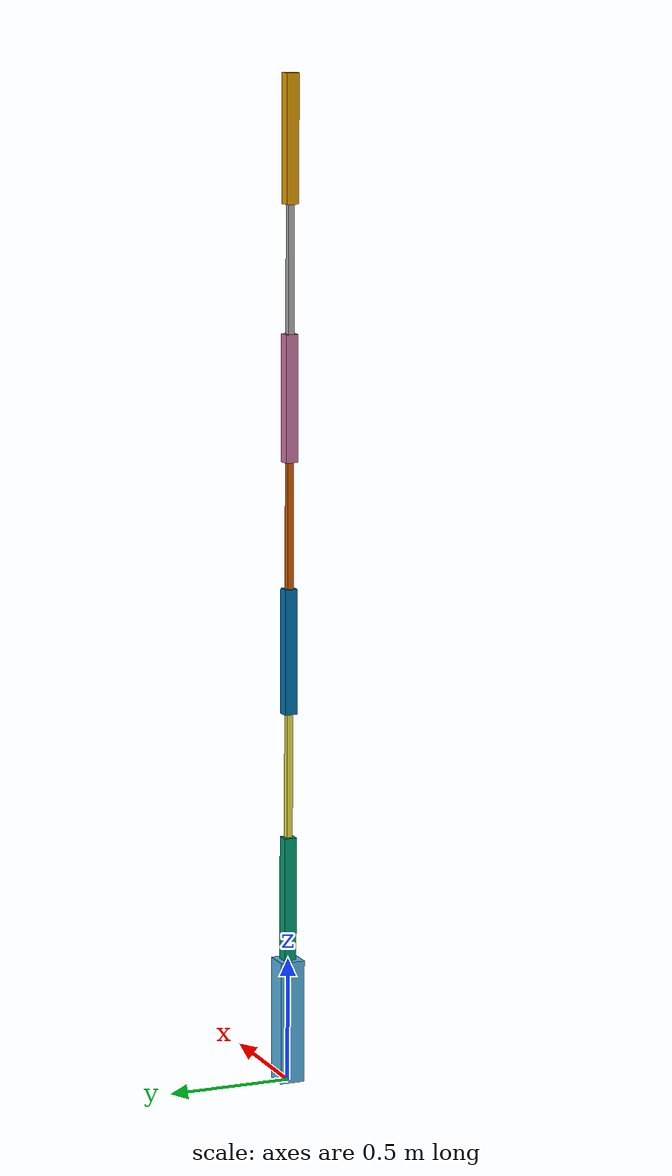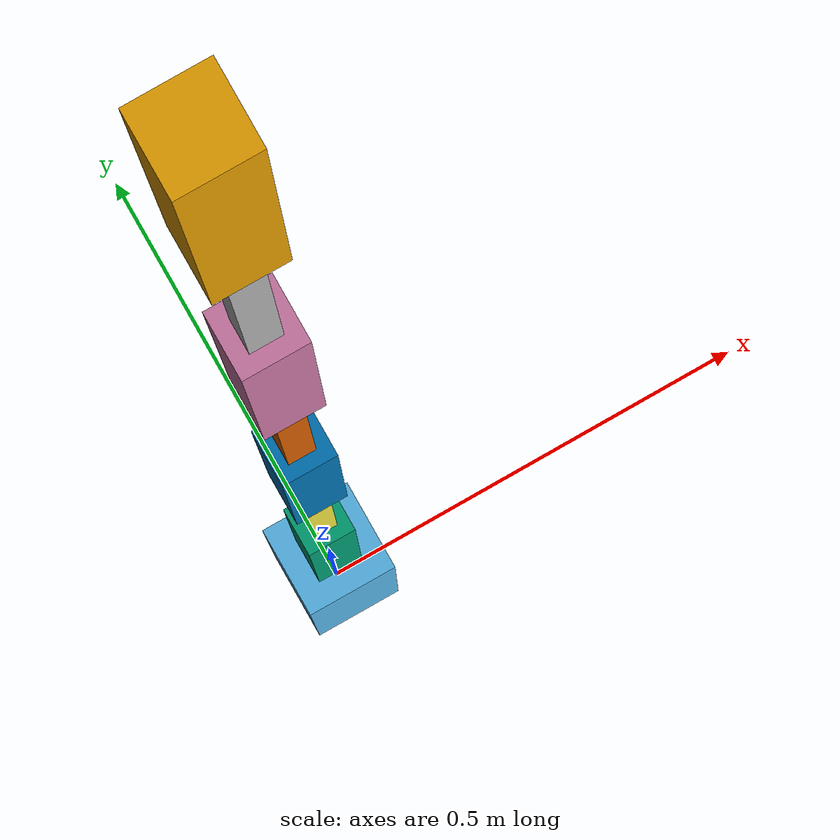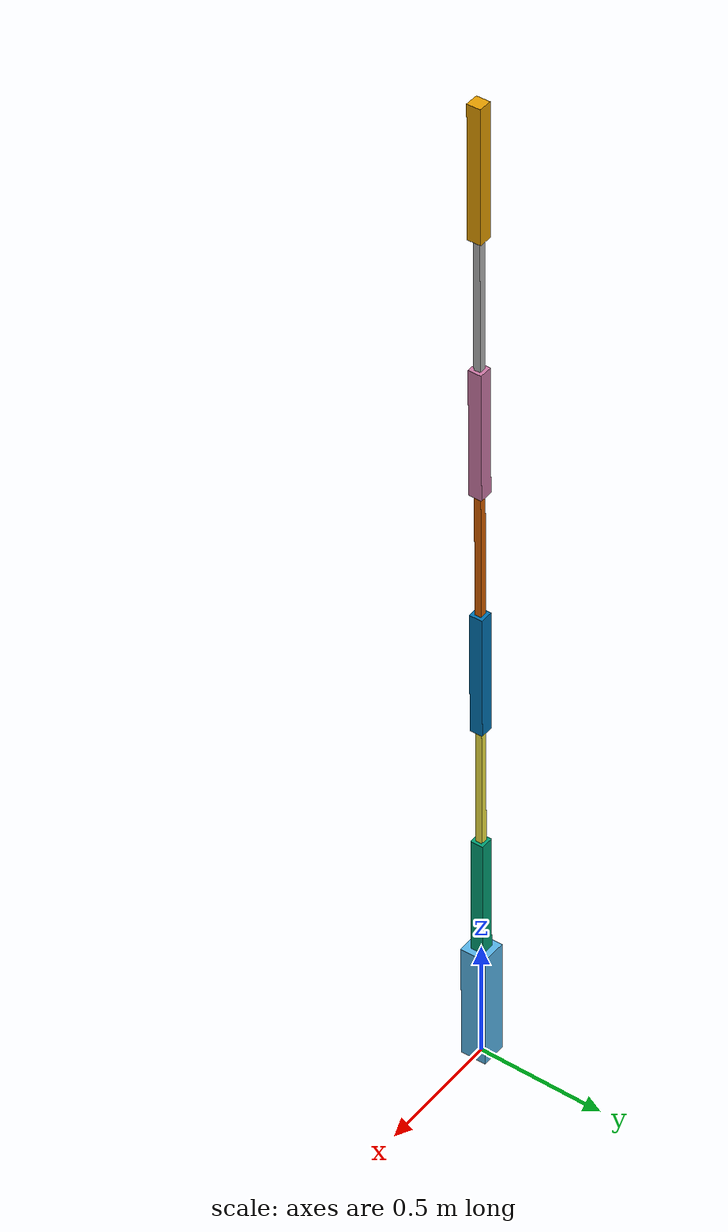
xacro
<robot name="cyton_gamma_1500" xmlns:xacro="http://www.ros.org/wiki/xacro">

	<xacro:property name="link1_x" value="0.1" />
	<xacro:property name="link1_y" value="0.1" />
	<xacro:property name="link1_z" value="0.5" />

	<xacro:property name="link2_x" value="0.05" />
	<xacro:property name="link2_y" value="0.05" />
	<xacro:property name="link2_z" value="0.5" />

	<xacro:property name="link3_x" value="0.025" />
	<xacro:property name="link3_y" value="0.025" />
	<xacro:property name="link3_z" value="0.5" />

	<xacro:property name="link4_x" value="0.05" />
	<xacro:property name="link4_y" value="0.05" />
	<xacro:property name="link4_z" value="0.5" />

	<xacro:property name="link5_x" value="0.025" />
	<xacro:property name="link5_y" value="0.025" />
	<xacro:property name="link5_z" value="0.5" />

	<xacro:property name="link6_x" value="0.05" />
	<xacro:property name="link6_y" value="0.05" />
	<xacro:property name="link6_z" value="0.5" />

	<xacro:property name="link7_x" value="0.025" />
	<xacro:property name="link7_y" value="0.025" />
	<xacro:property name="link7_z" value="0.5" />

	<xacro:property name="link8_x" value="0.05" />
	<xacro:property name="link8_y" value="0.05" />
	<xacro:property name="link8_z" value="0.5" />

	<!-- Used for fixing robot to Gazebo 'base_link' -->
	<link name="world"/>

	<joint name="fixed" type="fixed">
		<parent link="world"/>
		<child link="link1"/>
	</joint>

	<link name="link1">
		<collision>
	      <origin xyz="0 0 ${link1_z/2}" rpy="0 0 0"/>
	      <geometry>
	    	<box size="${link1_x} ${link1_y} ${link1_z}"/>
	      </geometry>
	    </collision>

	    <inertial>
	      <origin xyz="0 0 ${link1_z/2}" rpy="0 0 0"/>
	      <mass value="1"/>
	      <inertia
		    ixx="1.0" ixy="0.0" ixz="0.0"
		    iyy="1.0" iyz="0.0"
		    izz="1.0"/>
	    </inertial>

		<visual>
			<origin xyz="0 0 ${link1_z/2}" rpy="0 0 0" />
			<geometry>
				<box size="${link1_x} ${link1_y} ${link1_z}"/>
			</geometry>
		</visual>
	</link>

	<link name="link2">
		<collision>
	      <origin xyz="0 0 ${link2_z/2}" rpy="0 0 0"/>
	      <geometry>
	    	<box size="${link2_x} ${link2_y} ${link2_z}"/>
	      </geometry>
	    </collision>

	    <inertial>
	      <origin xyz="0 0 ${link2_z/2}" rpy="0 0 0"/>
	      <mass value="1"/>
	      <inertia
		    ixx="1.0" ixy="0.0" ixz="0.0"
		    iyy="1.0" iyz="0.0"
		    izz="1.0"/>
	    </inertial>

		<visual>
			<origin xyz="0 0 ${link2_z/2}" rpy="0 0 0" />
			<geometry>
				<box size="${link2_x} ${link2_y} ${link2_z}"/>
			</geometry>
		</visual>
	</link>

	<link name="link3">
		<collision>
	      <origin xyz="0 0 ${link3_z/2}" rpy="0 0 0"/>
	      <geometry>
	    	<box size="${link3_x} ${link3_y} ${link3_z}"/>
	      </geometry>
	    </collision>

	    <inertial>
	      <origin xyz="0 0 ${link3_z/2}" rpy="0 0 0"/>
	      <mass value="1"/>
	      <inertia
		    ixx="1.0" ixy="0.0" ixz="0.0"
		    iyy="1.0" iyz="0.0"
		    izz="1.0"/>
	    </inertial>

		<visual>
			<origin xyz="0 0 ${link3_z/2}" rpy="0 0 0" />
			<geometry>
				<box size="${link3_x} ${link3_y} ${link3_z}"/>
			</geometry>
		</visual>
	</link>

	<link name="link4">
		<collision>
	      <origin xyz="0 0 ${link4_z/2}" rpy="0 0 0"/>
	      <geometry>
	    	<box size="${link4_x} ${link4_y} ${link4_z}"/>
	      </geometry>
	    </collision>

	    <inertial>
	      <origin xyz="0 0 ${link4_z/2}" rpy="0 0 0"/>
	      <mass value="1"/>
	      <inertia
		    ixx="1.0" ixy="0.0" ixz="0.0"
		    iyy="1.0" iyz="0.0"
		    izz="1.0"/>
	    </inertial>

		<visual>
			<origin xyz="0 0 ${link4_z/2}" rpy="0 0 0" />
			<geometry>
				<box size="${link4_x} ${link4_y} ${link4_z}"/>
			</geometry>
		</visual>
	</link>

	<link name="link5">
		<collision>
	      <origin xyz="0 0 ${link5_z/2}" rpy="0 0 0"/>
	      <geometry>
	    	<box size="${link5_x} ${link5_y} ${link5_z}"/>
	      </geometry>
	    </collision>

	    <inertial>
	      <origin xyz="0 0 ${link5_z/2}" rpy="0 0 0"/>
	      <mass value="1"/>
	      <inertia
		    ixx="1.0" ixy="0.0" ixz="0.0"
		    iyy="1.0" iyz="0.0"
		    izz="1.0"/>
	    </inertial>

		<visual>
			<origin xyz="0 0 ${link5_z/2}" rpy="0 0 0" />
			<geometry>
				<box size="${link5_x} ${link5_y} ${link5_z}"/>
			</geometry>
		</visual>
	</link>

	<link name="link6">
		<collision>
	      <origin xyz="0 0 ${link6_z/2}" rpy="0 0 0"/>
	      <geometry>
	    	<box size="${link6_x} ${link6_y} ${link6_z}"/>
	      </geometry>
	    </collision>

	    <inertial>
	      <origin xyz="0 0 ${link6_z/2}" rpy="0 0 0"/>
	      <mass value="1"/>
	      <inertia
		    ixx="1.0" ixy="0.0" ixz="0.0"
		    iyy="1.0" iyz="0.0"
		    izz="1.0"/>
	    </inertial>

		<visual>
			<origin xyz="0 0 ${link6_z/2}" rpy="0 0 0" />
			<geometry>
				<box size="${link6_x} ${link6_y} ${link6_z}"/>
			</geometry>
		</visual>
	</link>

	<link name="link7">
		<collision>
	      <origin xyz="0 0 ${link7_z/2}" rpy="0 0 0"/>
	      <geometry>
	    	<box size="${link7_x} ${link7_y} ${link7_z}"/>
	      </geometry>
	    </collision>

	    <inertial>
	      <origin xyz="0 0 ${link7_z/2}" rpy="0 0 0"/>
	      <mass value="1"/>
	      <inertia
		    ixx="1.0" ixy="0.0" ixz="0.0"
		    iyy="1.0" iyz="0.0"
		    izz="1.0"/>
	    </inertial>

		<visual>
			<origin xyz="0 0 ${link7_z/2}" rpy="0 0 0" />
			<geometry>
				<box size="${link7_x} ${link7_y} ${link7_z}"/>
			</geometry>
		</visual>
	</link>
	<link name="link8">
		<collision>
	      <origin xyz="0 0 ${link8_z/2}" rpy="0 0 0"/>
	      <geometry>
	    	<box size="${link8_x} ${link8_y} ${link8_z}"/>
	      </geometry>
	    </collision>

	    <inertial>
	      <origin xyz="0 0 ${link8_z/2}" rpy="0 0 0"/>
	      <mass value="1"/>
	      <inertia
		    ixx="1.0" ixy="0.0" ixz="0.0"
		    iyy="1.0" iyz="0.0"
		    izz="1.0"/>
	    </inertial>

		<visual>
			<origin xyz="0 0 ${link8_z/2}" rpy="0 0 0" />
			<geometry>
				<box size="${link8_x} ${link8_y} ${link8_z}"/>
			</geometry>
		</visual>
	</link>

	<joint name="joint1" type="revolute">
      <parent link="link1"/>
      <child link="link2"/>
      <origin xyz="0 0 0.5" rpy="0 0 0" />
      <axis xyz="0.0 0.0 1.0" />
      <limit effort="1000.0" lower="-0.78535" upper="0.78535" velocity="0.5"/>
    </joint>

	<joint name="joint2" type="revolute">
		<parent link="link2"/>
		<child link="link3"/>
		<origin xyz="0 0 0.5" rpy="0 0 0" />
		<axis xyz="1.0 0.0 0.0" />
		<limit effort="1000.0" lower="-0.78535" upper="0.78535" velocity="0.5"/>
	</joint>

	<joint name="joint3" type="revolute">
		<parent link="link3"/>
		<child link="link4"/>
		<origin xyz="0 0 0.5" rpy="0 0 0" />
		<axis xyz="0.0 1.0 0.0" />
		<limit effort="1000.0" lower="-0.78535" upper="0.78535" velocity="0.5"/>
	</joint>

	<joint name="joint4" type="revolute">
		<parent link="link4"/>
		<child link="link5"/>
		<origin xyz="0 0 0.5" rpy="0 0 0" />
		<axis xyz="1.0 0.0 0.0" />
		<limit effort="1000.0" lower="-0.78535" upper="0.78535" velocity="0.5"/>
	</joint>

	<joint name="joint5" type="revolute">
		<parent link="link5"/>
		<child link="link6"/>
		<origin xyz="0 0 0.5" rpy="0 0 0" />
		<axis xyz="0.0 1.0 0.0" />
		<limit effort="1000.0" lower="-0.78535" upper="0.78535" velocity="0.5"/>
	</joint>

	<joint name="joint6" type="revolute">
		<parent link="link6"/>
		<child link="link7"/>
		<origin xyz="0 0 0.5" rpy="0 0 0" />
		<axis xyz="0.0 1.0 0.0" />
		<limit effort="1000.0" lower="-0.78535" upper="0.78535" velocity="0.5"/>
	</joint>

	<joint name="joint7" type="revolute">
		<parent link="link7"/>
		<child link="link8"/>
		<origin xyz="0 0 0.5" rpy="0 0 0" />
		<axis xyz="0.0 1.0 0.0" />
		<limit effort="1000.0" lower="-0.78535" upper="0.78535" velocity="0.5"/>
	</joint>

</robot>
